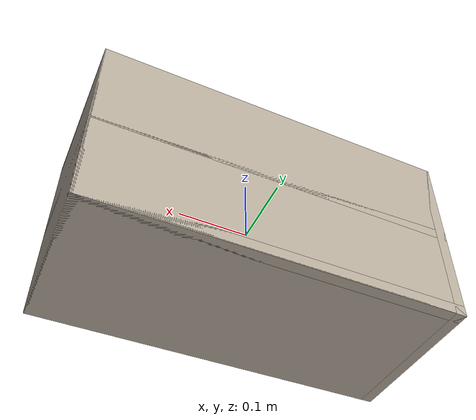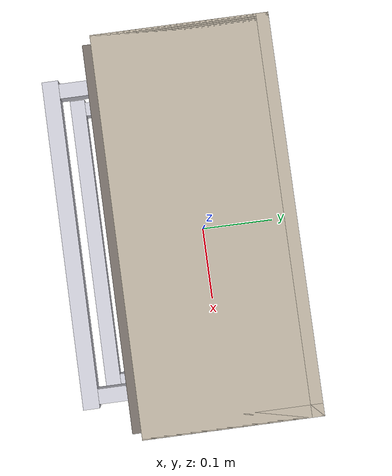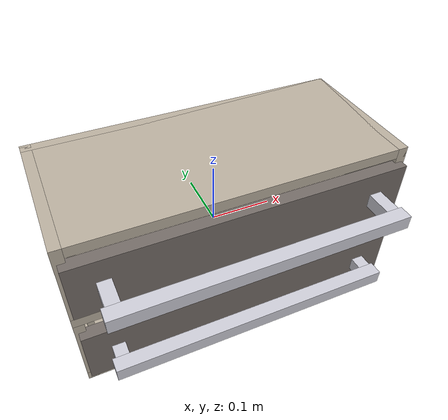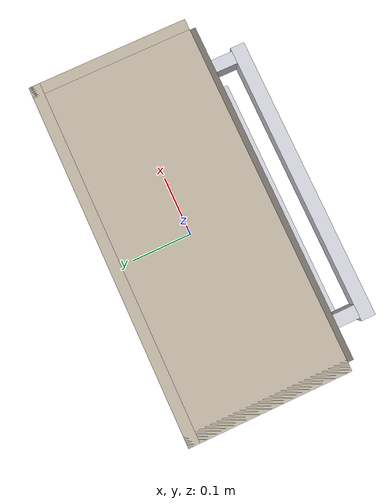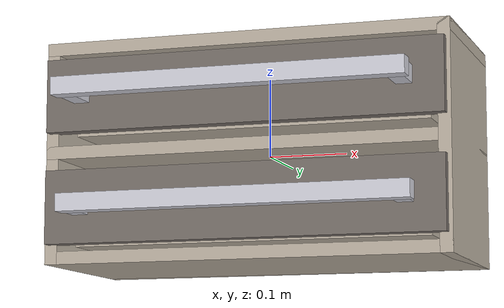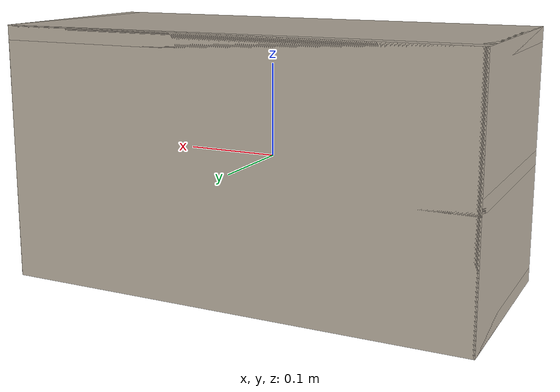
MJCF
<mujoco model="drawer2">
  <compiler angle="radian"/>
  <asset>
    <material name="body_mat" rgba="0.72 0.68 0.62 1" shininess="0.2" specular="0.3"/>
    <material name="front_mat" rgba="0.45 0.42 0.40 1" shininess="0.3" specular="0.4"/>
    <material name="handle_mat" rgba="0.80 0.80 0.84 1" shininess="0.8" specular="0.8"/>
  </asset>
  <default>
    <default class="cab"><geom group="0" type="box" material="body_mat"/></default>
    <default class="region"><geom group="1" conaffinity="0" contype="0" rgba="0 1 0 0"/></default>
  </default>
  <worldbody>
    <body>
      <body name="object">
        <geom class="cab" name="side_l" pos="-0.250  0.000  0.000" size="0.008 0.115 0.140"/>
        <geom class="cab" name="side_r" pos=" 0.250  0.000  0.000" size="0.008 0.115 0.140"/>
        <geom class="cab" name="back"   pos=" 0.000  0.107  0.000" size="0.258 0.008 0.140"/>
        <geom class="cab" name="floor"  pos=" 0.000  0.000 -0.132" size="0.258 0.115 0.008"/>
        <geom class="cab" name="shelf"  pos=" 0.000  0.000  0.000" size="0.258 0.115 0.008"/>
        <geom class="cab" name="top"    pos=" 0.000  0.000  0.132" size="0.258 0.115 0.008"/>

        <body name="lower" pos="0 0 -0.070">
          <joint name="lower_slide" type="slide" axis="0 -1 0" limited="true" range="0 0.15"
                 damping="1.0" frictionloss="0.3" armature="0.02"/>
          <geom class="cab" name="lo_bottom" pos="0  0.000 -0.038" size="0.228 0.088 0.008"/>
          <geom class="cab" name="lo_back"   pos="0  0.080  0.000" size="0.228 0.008 0.030"/>
          <geom class="cab" name="lo_left"   pos="-0.233 0.000 0.000" size="0.005 0.088 0.030"/>
          <geom class="cab" name="lo_right"  pos=" 0.233 0.000 0.000" size="0.005 0.088 0.030"/>
          <geom class="cab" name="lo_front"  pos="0 -0.118 0.000" size="0.253 0.010 0.046"
                material="front_mat"/>
          <geom name="lo_handle" type="box" material="handle_mat" group="0"
                pos="0 -0.160 0.000" size="0.220 0.011 0.011"/>
          <geom name="lo_post_l" type="box" material="handle_mat" group="0"
                pos="-0.205 -0.139 0.000" size="0.010 0.010 0.011"/>
          <geom name="lo_post_r" type="box" material="handle_mat" group="0"
                pos=" 0.205 -0.139 0.000" size="0.010 0.010 0.011"/>
          <geom class="region" name="lo_int" type="box" pos="0 0.000 0.000"
                size="0.220 0.080 0.028"/>
        </body>

        <body name="upper" pos="0 0 0.070">
          <joint name="upper_slide" type="slide" axis="0 -1 0" limited="true" range="0 0.15"
                 damping="1.0" frictionloss="0.3" armature="0.02"/>
          <geom class="cab" name="up_bottom" pos="0  0.000 -0.038" size="0.228 0.088 0.008"/>
          <geom class="cab" name="up_back"   pos="0  0.080  0.000" size="0.228 0.008 0.030"/>
          <geom class="cab" name="up_left"   pos="-0.233 0.000 0.000" size="0.005 0.088 0.030"/>
          <geom class="cab" name="up_right"  pos=" 0.233 0.000 0.000" size="0.005 0.088 0.030"/>
          <geom class="cab" name="up_front"  pos="0 -0.118 0.000" size="0.253 0.010 0.046"
                material="front_mat"/>
<geom name="up_handle" type="box" material="handle_mat" group="0"
                pos="0 -0.180 0.000" size="0.220 0.011 0.011"/>
          <geom name="up_post_l" type="box" material="handle_mat" group="0"
                pos="-0.205 -0.149 0.000" size="0.010 0.020 0.011"/>
          <geom name="up_post_r" type="box" material="handle_mat" group="0"
                pos=" 0.205 -0.149 0.000" size="0.010 0.020 0.011"/>
          <geom class="region" name="up_int" type="box" pos="0 0.000 0.000"
                size="0.220 0.080 0.028"/>
        </body>
      </body>
    </body>
  </worldbody>
</mujoco>
